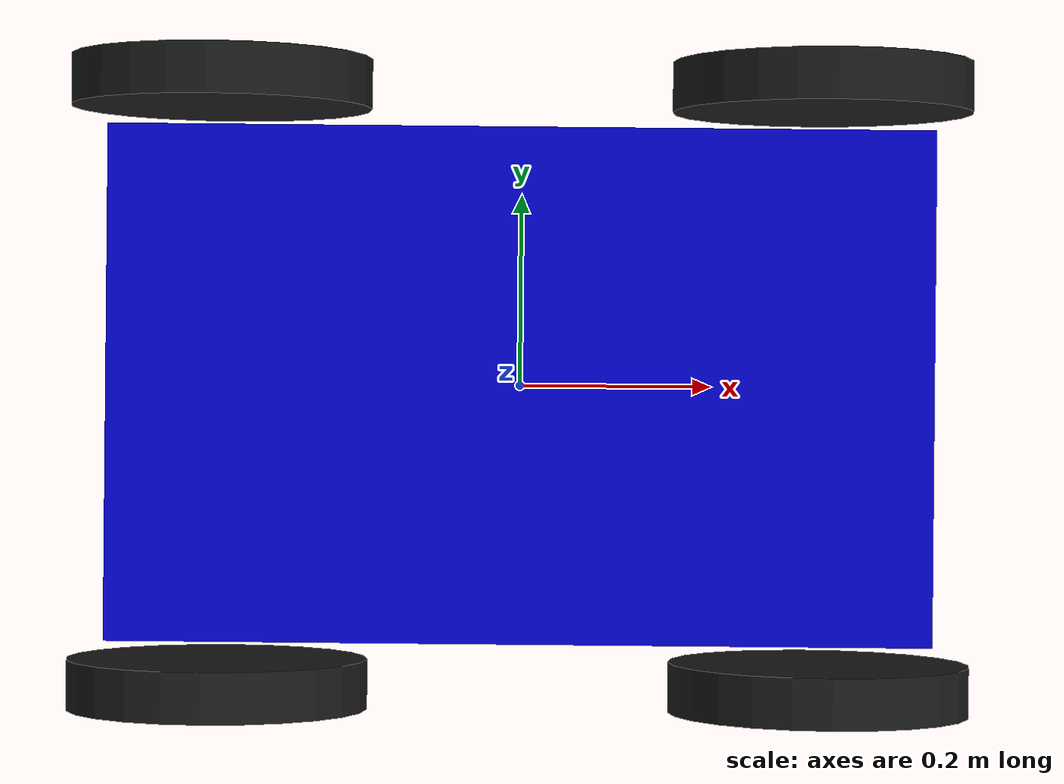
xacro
<?xml version="1.0"?>
<robot name="sim2d_robot" xmlns:xacro="http://ros.org/wiki/xacro">

    <!-- === BASE ROBOT PARAMETERS === -->
    <xacro:property name="base_length" value="0.8"/>
    <xacro:property name="base_width"  value="0.5"/>
    <xacro:property name="wheel_radius" value="0.15"/>
    <!-- X_icr: Instantaneous Center of Rotation offset.
         0.0 for pure DifferentialDrive, > 0 for Skid-Steer -->
    <xacro:property name="x_icr" value="0.0"/>

    <!-- === BASE LINK === -->
    <link name="base_footprint"/>

    <link name="base_link">
        <visual>
            <geometry>
                <box size="${base_length} ${base_width} 0.2"/>
            </geometry>
            <material name="blue">
                <color rgba="0.0 0.0 0.8 1.0"/>
            </material>
        </visual>
    </link>

    <joint name="base_joint" type="fixed">
        <parent link="base_footprint"/>
        <child link="base_link"/>
        <origin xyz="0 0 ${wheel_radius}" rpy="0 0 0"/>
    </joint>

    <!-- === WHEEL MACRO === -->
    <!-- Creates the visual and collision parts of a wheel -->
    <xacro:macro name="sim2d_wheel" params="prefix x y">
        <link name="${prefix}_wheel_link">
            <visual>
                <geometry>
                    <cylinder radius="${wheel_radius}" length="0.05"/>
                </geometry>
                <material name="black">
                    <color rgba="0.1 0.1 0.1 1.0"/>
                </material>
            </visual>
        </link>

        <joint name="${prefix}_wheel_joint" type="continuous">
            <parent link="base_link"/>
            <child link="${prefix}_wheel_link"/>
            <origin xyz="${x} ${y} 0.0" rpy="-1.57079632679 0 0"/>
            <axis xyz="0 0 1"/>
        </joint>
    </xacro:macro>

    <!-- Spawn 4 wheels (Rear are driving, Front are castors) -->
    <xacro:sim2d_wheel prefix="rear_left"   x="-0.3" y=" 0.3"/>
    <xacro:sim2d_wheel prefix="rear_right"  x="-0.3" y="-0.3"/>
    <xacro:sim2d_wheel prefix="front_left"  x=" 0.3" y=" 0.3"/>
    <xacro:sim2d_wheel prefix="front_right" x=" 0.3" y="-0.3"/>

    <!-- === ROS2 CONTROL CONFIGURATION FOR THE SIMULATOR === -->
    <ros2_control name="Sim2DSystem" type="system">
        <hardware>
            <!-- Our plugin -->
            <plugin>sim2d_hardware_interface::Sim2DHardwareInterface</plugin>
            <!-- Global simulator parameters -->
            <param name="x_icr">${x_icr}</param>
        </hardware>

        <!-- Macro to register a wheel joint with the plugin -->
        <xacro:macro name="sim2d_control_joint" params="prefix x y drive behavior alpha beta1 beta2">
            <joint name="${prefix}_wheel_joint">

                <!-- If the wheel is driven, declare a velocity command interface -->
                <xacro:if value="${drive}">
                    <command_interface name="velocity"/>
                </xacro:if>

                <!-- State interfaces for all wheels (for visualization) -->
                <state_interface name="position"/>
                <state_interface name="velocity"/>

                <!-- === WHEEL KINEMATICS (read by on_init) === -->
                <param name="x">${x}</param>
                <param name="y">${y}</param>
                <param name="radius">${wheel_radius}</param>
                <param name="mount_angle">0.0</param>
                <param name="steerable">false</param>
                <param name="zero_command_behavior">${behavior}</param>

                <!-- Slip coefficients -->
                <param name="alpha">${alpha}</param>
                <param name="beta1">${beta1}</param>
                <param name="beta2">${beta2}</param>
            </joint>
        </xacro:macro>

        <!-- Register REAR DRIVING wheels -->
        <!-- behavior="locked" - wheel brakes when command is zero (Case A from pipeline) -->
        <!-- alpha="0.95", slight longitudinal slip -->
        <xacro:sim2d_control_joint prefix="rear_left"   x="-0.3" y="0.3" drive="true" behavior="locked" alpha="0.95" beta1="0.05" beta2="0.1"/>
        <xacro:sim2d_control_joint prefix="rear_right"  x="-0.3" y="-0.3" drive="true" behavior="locked" alpha="0.95" beta1="0.05" beta2="0.1"/>

        <!-- Register FRONT CASTOR wheels (passive) -->
        <!-- drive="false" - no command interface, not controlled -->
        <!-- behavior="free" - rolls freely, provides only lateral constraint (Case B) -->
        <!-- alpha="1.0" - no longitudinal slip as there is no drive -->
        <xacro:sim2d_control_joint prefix="front_left"  x="0.3" y="0.3" drive="false" behavior="free" alpha="1.0" beta1="0.0" beta2="0.0"/>
        <xacro:sim2d_control_joint prefix="front_right" x="0.3" y="-0.3" drive="false" behavior="free" alpha="1.0" beta1="0.0" beta2="0.0"/>

    </ros2_control>

</robot>
